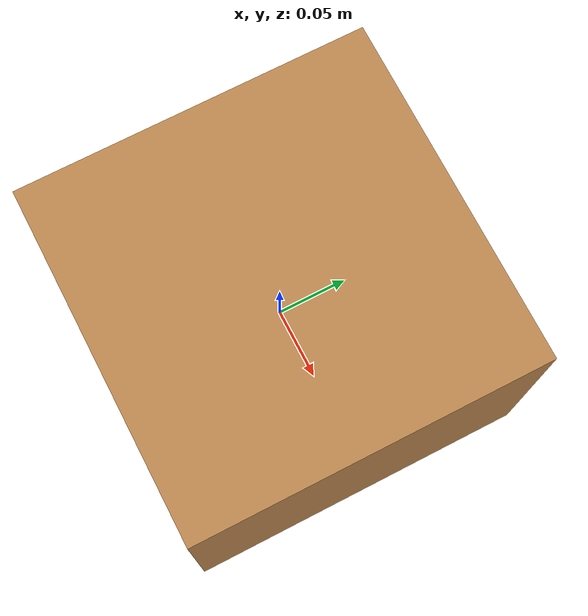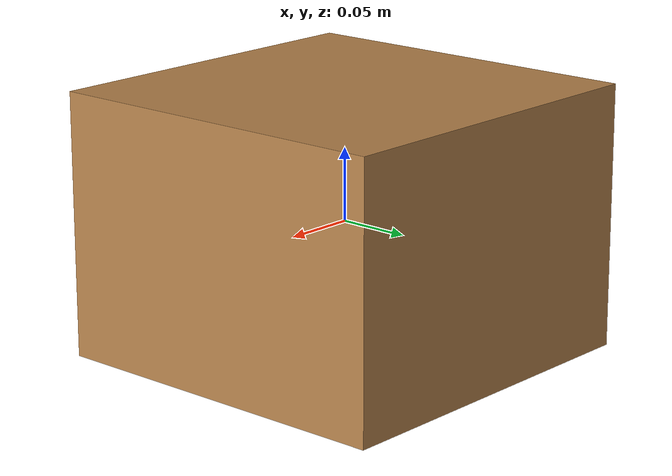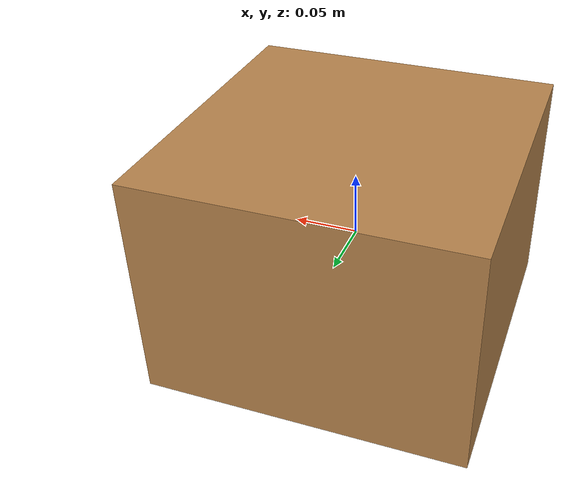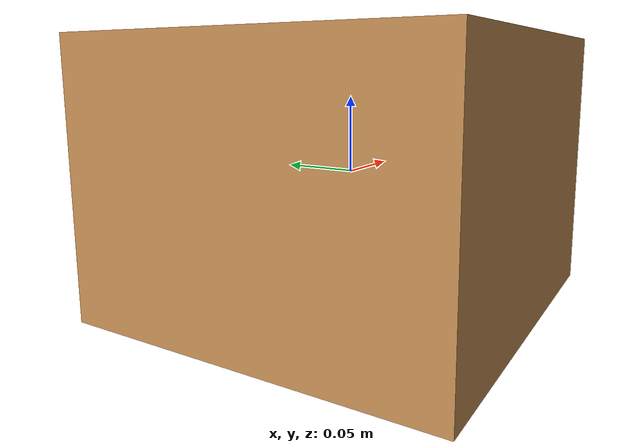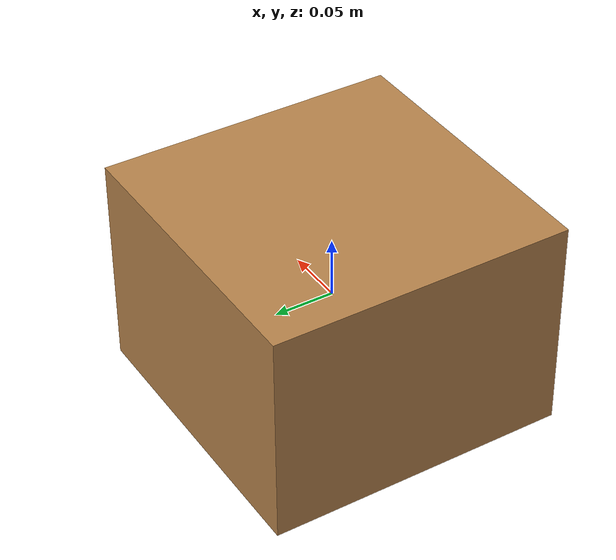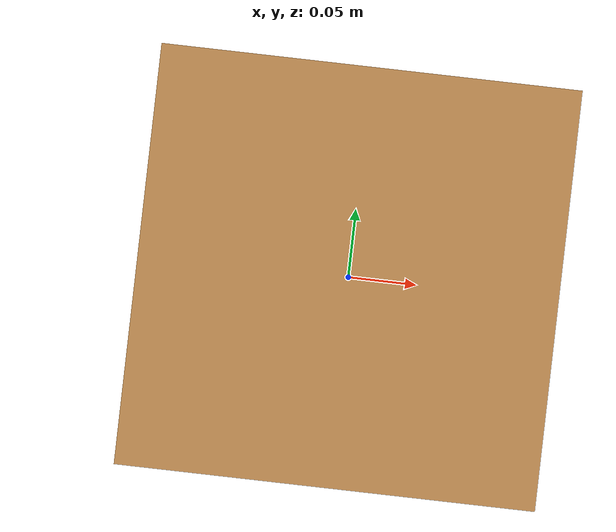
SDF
<?xml version="1.0" encoding="UTF-8"?>
<sdf version='1.9'>
  <model name='cargo_box'>
    <static>true</static>
    <pose>0 0 0 0 0 0</pose>
    <link name='link'>
      <visual name='visual'>
        <geometry>
          <box>
            <size>0.25 0.25 0.18</size>
          </box>
        </geometry>
        <material>
          <ambient>0.72 0.52 0.30 1</ambient>
          <diffuse>0.72 0.52 0.30 1</diffuse>
          <specular>0.1 0.1 0.1 1</specular>
        </material>
      </visual>
      <!-- Visual only: a collision shape on a kinematically teleported body
           generates spurious contacts with the airframe it is following. -->
    </link>
  </model>
</sdf>
